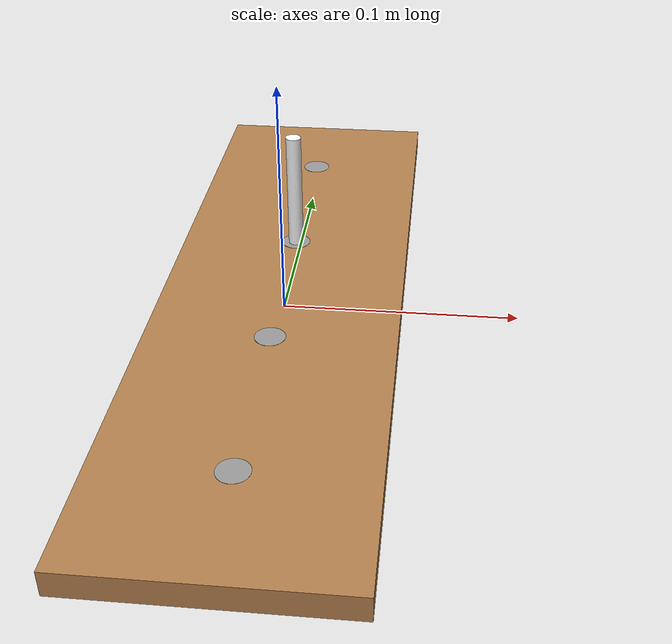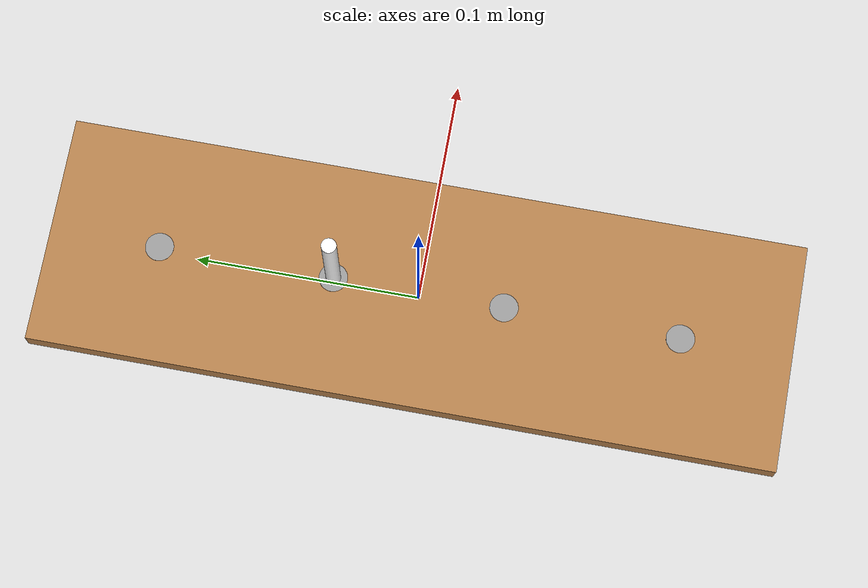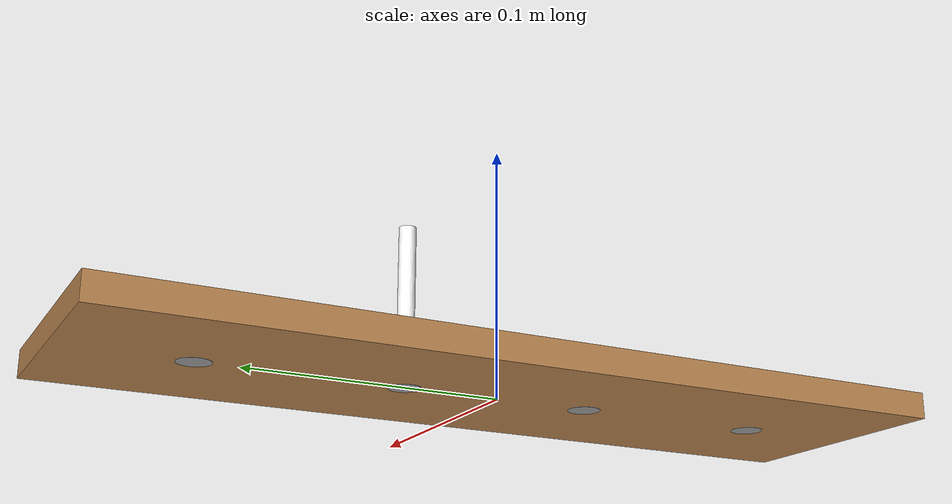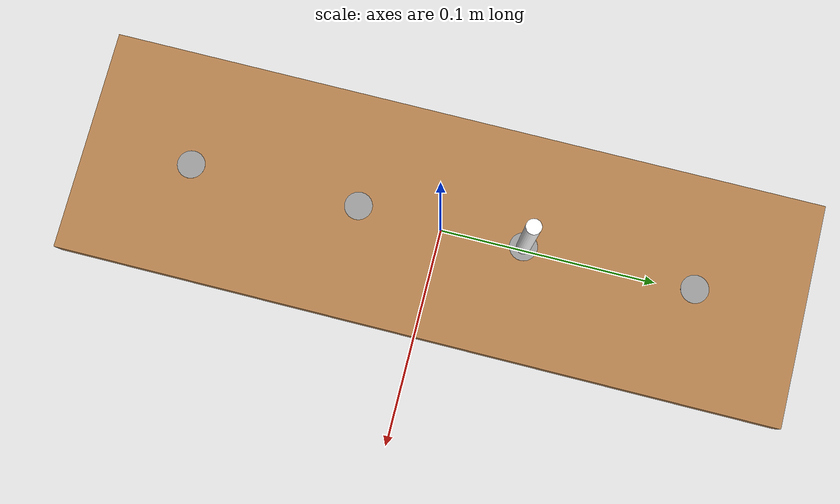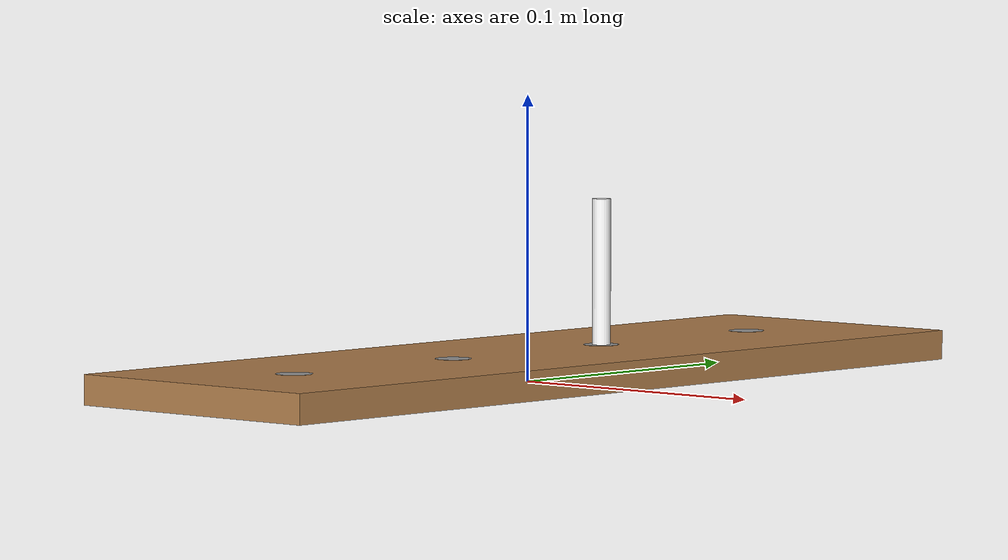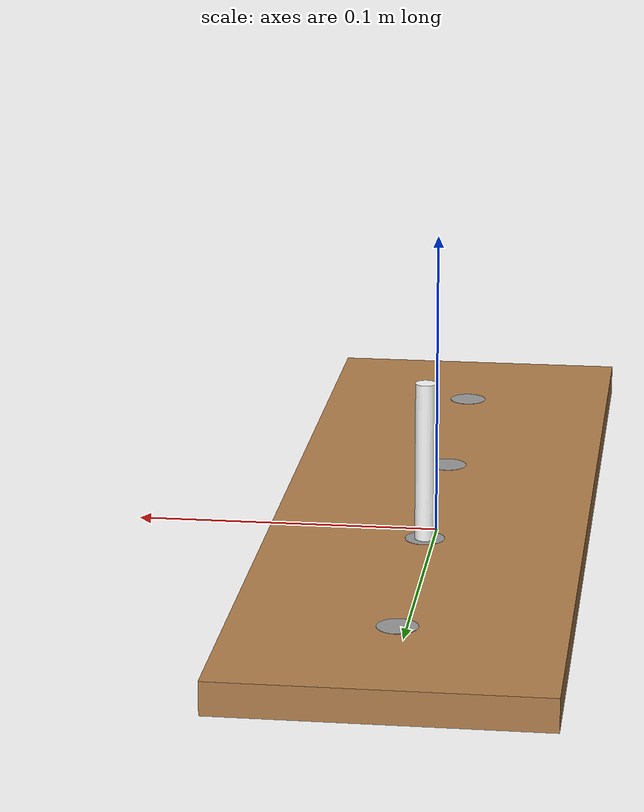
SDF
<?xml version="1.0" ?>

<sdf version="1.5">
  <model name="metal_peg_board">
    <include>
      <name>wooden_board</name>
      <uri>model://wooden_board</uri>
      <pose>0 0 0 0 0 0</pose>
    </include>

    <include>
      <name>peg</name>
      <uri>model://metal_peg</uri>
      <pose>0 0.038 0 0 0 0</pose>
    </include>

    <joint name="board_peg" type="revolute">
      <parent>wooden_board::base</parent>
      <child>peg::link</child>
      <axis>
        <xyz>0 0 1</xyz>
        <limit>
          <upper>0</upper>
          <lower>0</lower>
        </limit>
      </axis>
    </joint>

  </model>
</sdf>

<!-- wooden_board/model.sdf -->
<sdf version="1.5">
  <model name="wooden_board">
    <link name="base">

      <pose>0 0 0.00523 0 0 0</pose>
      <inertial>
        <mass>0.2765</mass>
        <inertia>
          <ixx>0.0025148009472833336</ixx>
          <ixy>0</ixy>
          <ixz>0</ixz>
          <iyy>0.00024037001228333334</iyy>
          <iyz>0</iyz>
          <izz>0.002750128908333333</izz>
        </inertia>
      </inertial>

      <collision name="collision">
        <geometry>
          <box>
            <size>0.1016 0.3302 0.01046</size>
          </box>
        </geometry>
        <surface>
          <contact>
            <!-- Red Pine coefficients for longitudinal axis of the wood
                 according to:
                 http://www.fpl.fs.fed.us/documnts/fplgtr/fplgtr113/ch04.pdf -->
            <poissons_ratio>0.347</poissons_ratio>
            <elastic_modulus>8.8e+09</elastic_modulus>
            <ode>
              <kp>100000</kp>
              <kd>100</kd>
              <max_vel>100.0</max_vel>
              <min_depth>0.001</min_depth>
            </ode>
          </contact>
          <friction>
            <torsional>
              <coefficient>1.0</coefficient>
              <use_patch_radius>0</use_patch_radius>
              <surface_radius>0.01</surface_radius>
            </torsional>
          </friction>
        </surface>
      </collision>

      <visual name="visual">
        <geometry>
          <box>
            <size>0.1016 0.3302 0.01046</size>
          </box>
        </geometry>
        <material>
          <script>
            <uri>file://media/materials/scripts/gazebo.material</uri>
            <name>Gazebo/Wood</name>
          </script>
        </material>
      </visual>

      <visual name='tee_nut_1'>
        <pose>0.0 -0.116 0.0  0 0 0</pose>
        <geometry>
          <cylinder>
            <radius>0.00635</radius>
            <length>0.0105646</length>
          </cylinder>
        </geometry>
        <material>
          <script>
            <uri>file://media/materials/scripts/gazebo.material</uri>
            <name>Gazebo/Grey</name>
          </script>
        </material>
      </visual>

      <visual name='tee_nut_2'>
        <pose>0.0 -0.038 0.0  0 0 0</pose>
        <geometry>
          <cylinder>
            <radius>0.00635</radius>
            <length>0.0105646</length>
          </cylinder>
        </geometry>
        <material>
          <script>
            <uri>file://media/materials/scripts/gazebo.material</uri>
            <name>Gazebo/Grey</name>
          </script>
        </material>
      </visual>

      <visual name='tee_nut_3'>
        <pose>0.0 0.038 0.0  0 0 0</pose>
        <geometry>
          <cylinder>
            <radius>0.00635</radius>
            <length>0.0105646</length>
          </cylinder>
        </geometry>
        <material>
          <script>
            <uri>file://media/materials/scripts/gazebo.material</uri>
            <name>Gazebo/Grey</name>
          </script>
        </material>
      </visual>

      <visual name='tee_nut_4'>
        <pose>0.0 0.116 0.0  0 0 0</pose>
        <geometry>
          <cylinder>
            <radius>0.00635</radius>
            <length>0.0105646</length>
          </cylinder>
        </geometry>
        <material>
          <script>
            <uri>file://media/materials/scripts/gazebo.material</uri>
            <name>Gazebo/Grey</name>
          </script>
        </material>
      </visual>

    </link>

  </model>
</sdf>

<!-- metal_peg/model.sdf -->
<sdf version="1.5">
  <model name="metal_peg">
    <link name="link">
      <pose>0 0 0.031 0 0 0</pose>
      <inertial>
        <mass>0.0121</mass>
        <inertia>
          <ixx>3.908975583333333e-06</ixx>
          <ixy>0</ixy>
          <ixz>0</ixz>
          <iyy>3.908975583333333e-06</iyy>
          <iyz>0</iyz>
          <izz>6.58845e-08</izz>
        </inertia>
      </inertial>

      <collision name="collision">
        <geometry>
          <cylinder>
            <radius> 0.0033 </radius>
            <length> 0.062 </length>
          </cylinder>
        </geometry>
        <surface>
          <contact>
            <!-- stainless steel 18-8 material properties -->
            <poissons_ratio>0.305</poissons_ratio>
            <elastic_modulus>2.0e+11</elastic_modulus>
            <ode>
              <kp>100000</kp>
              <kd>100</kd>
              <max_vel>100.0</max_vel>
              <min_depth>0.001</min_depth>
            </ode>
          </contact>
          <friction>
            <torsional>
              <coefficient>1.0</coefficient>
              <use_patch_radius>0</use_patch_radius>
              <surface_radius>0.01</surface_radius>
            </torsional>
          </friction>
        </surface>
      </collision>

      <visual name="visual">
        <geometry>
          <cylinder>
            <radius> 0.0033 </radius>
            <length> 0.062 </length>
          </cylinder>
        </geometry>
        <material><diffuse>1 1 1 1</diffuse><specular>0.1 0.1 0.1 1</specular></material>
      </visual>

    </link>
  </model>
</sdf>
